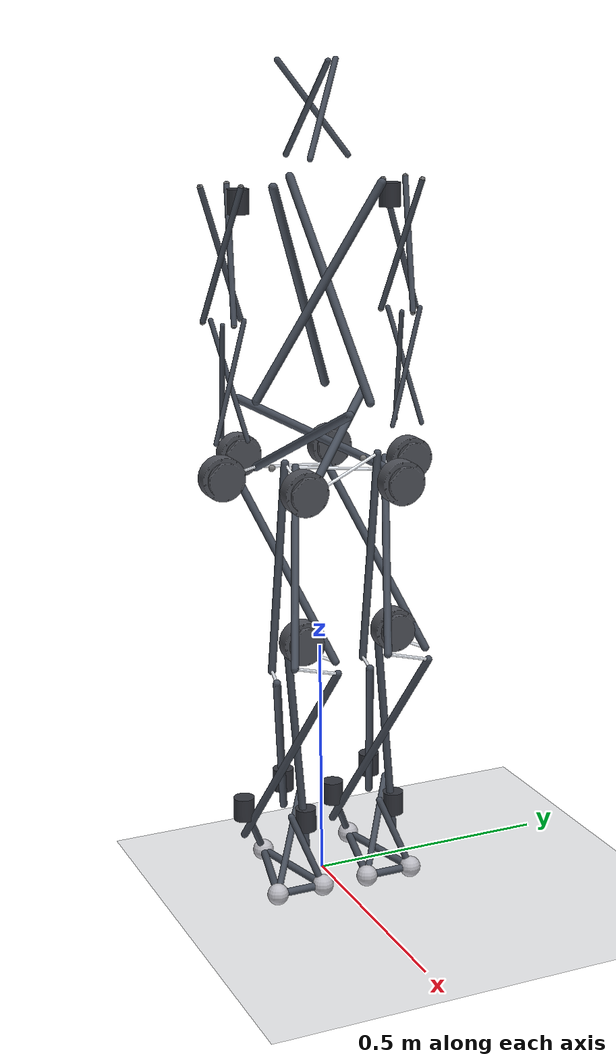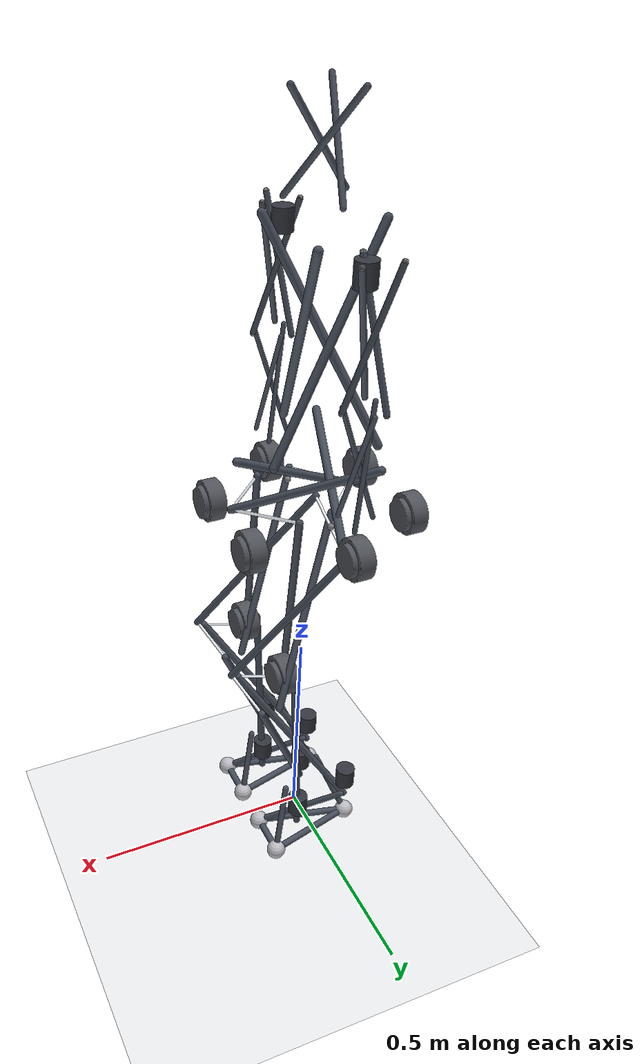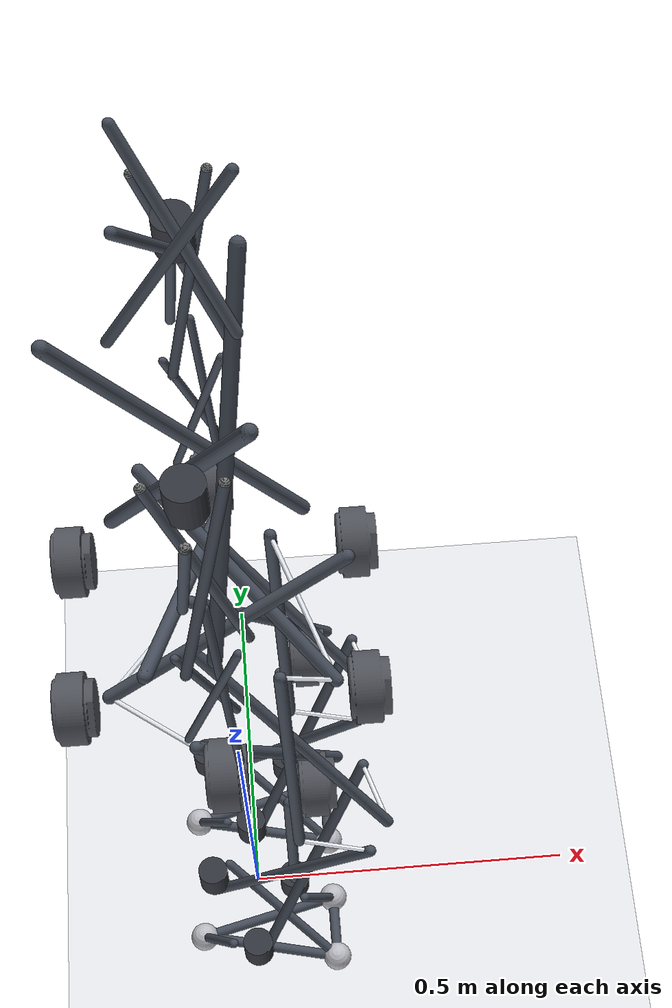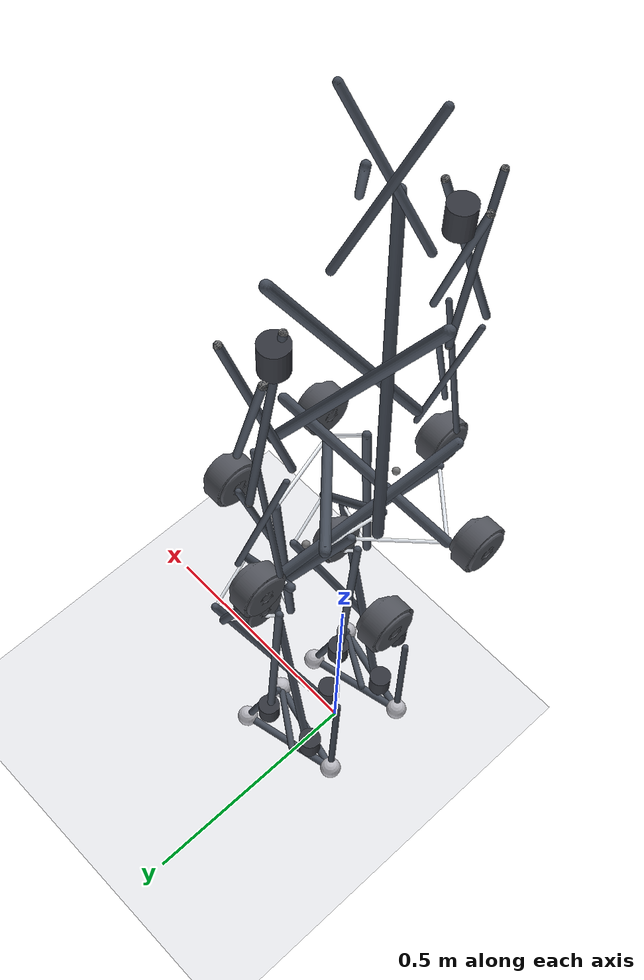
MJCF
<mujoco model="Hybrid Tensegrity Humanoid">
  <compiler angle="radian" autolimits="true" meshdir="assets"/>
  <option timestep="0.004" integrator="implicitfast" solver="Newton" iterations="60"/>
  <visual><global offwidth="1600" offheight="1200"/><map force="0.005"/></visual>
  <asset>
    <mesh name="ak70" file="ak70_10.stl"/>
    <mesh name="ak60" file="ak60_6.stl"/>
    <texture name="grid" type="2d" builtin="checker" rgb1="0.88 0.89 0.90" rgb2="0.96 0.96 0.97" width="512" height="512"/>
    <material name="grid" texture="grid" texrepeat="10 10"/>
  </asset>
  <default>
    <joint damping="1.5" armature="0.02" limited="true"/>
    <motor ctrllimited="true" ctrlrange="-1 1"/>
    <tendon rgba="0.95 0.97 1 1" width="0.0032"/>
  </default>
  <worldbody>
    <light pos="1.5 -1.5 3" dir="-0.35 0.35 -1" directional="true"/>
    <light pos="-2 1.5 2.5" dir="0.5 -0.4 -1" directional="true" diffuse="0.35 0.35 0.35"/>
    <geom name="floor" type="plane" size="8 8 0.1" material="grid" contype="1" conaffinity="1" friction="1.2 0.01 0.001"/>
    <body name="pelvis" pos="0 0 0.93900">
      <freejoint name="root"/>
      <geom type="capsule" size="0.009" mass="0" contype="0" conaffinity="0" rgba="0.28 0.31 0.36 1" fromto="0.00000 0.16000 -0.08000 -0.08048 -0.13828 0.08000"/>
      <geom type="capsule" size="0.009" mass="0" contype="0" conaffinity="0" rgba="0.28 0.31 0.36 1" fromto="-0.13856 -0.08000 -0.08000 0.16000 -0.00056 0.08000"/>
      <geom type="capsule" size="0.009" mass="0" contype="0" conaffinity="0" rgba="0.28 0.31 0.36 1" fromto="0.13856 -0.08000 -0.08000 -0.07952 0.13884 0.08000"/>
      <site name="pelv_b0" pos="0.00000 0.16000 -0.08000" size="0.006"/>
      <site name="pelv_t0" pos="-0.07952 0.13884 0.08000" size="0.006"/>
      <site name="pelv_b1" pos="-0.13856 -0.08000 -0.08000" size="0.006"/>
      <site name="pelv_t1" pos="-0.08048 -0.13828 0.08000" size="0.006"/>
      <site name="pelv_b2" pos="0.13856 -0.08000 -0.08000" size="0.006"/>
      <site name="pelv_t2" pos="0.16000 -0.00056 0.08000" size="0.006"/>
      <geom type="mesh" mesh="ak70" mass="0" contype="0" conaffinity="0" rgba="0.32 0.33 0.36 1" pos="0.17754 0.10250 -0.06000" xyaxes="0 0 1 0 1 0"/>
      <geom type="mesh" mesh="ak70" mass="0" contype="0" conaffinity="0" rgba="0.32 0.33 0.36 1" pos="0.00000 0.20500 -0.06000" xyaxes="0 0 1 0 1 0"/>
      <geom type="mesh" mesh="ak70" mass="0" contype="0" conaffinity="0" rgba="0.32 0.33 0.36 1" pos="-0.17754 0.10250 -0.06000" xyaxes="0 0 1 0 1 0"/>
      <geom type="mesh" mesh="ak70" mass="0" contype="0" conaffinity="0" rgba="0.32 0.33 0.36 1" pos="-0.17754 -0.10250 -0.06000" xyaxes="0 0 1 0 1 0"/>
      <geom type="mesh" mesh="ak70" mass="0" contype="0" conaffinity="0" rgba="0.32 0.33 0.36 1" pos="-0.00000 -0.20500 -0.06000" xyaxes="0 0 1 0 1 0"/>
      <geom type="mesh" mesh="ak70" mass="0" contype="0" conaffinity="0" rgba="0.32 0.33 0.36 1" pos="0.17754 -0.10250 -0.06000" xyaxes="0 0 1 0 1 0"/>
      <inertial pos="-0.01911 0.00000 -0.00395" mass="9.4200" fullinertia="0.095591 0.098451 0.154459 -0.000000 0.006711 0.000000"/>
      <site name="hip_anchor_l" pos="0.00000 0.10000 -0.05000" size="0.007"/>
      <site name="hip_anchor_r" pos="0.00000 -0.10000 -0.05000" size="0.007"/>
      <body name="torso" pos="0 0 0.30000">
        <geom type="capsule" size="0.009" mass="0" contype="0" conaffinity="0" rgba="0.28 0.31 0.36 1" fromto="-0.11258 0.06500 -0.21000 0.06461 -0.11281 0.21000"/>
        <geom type="capsule" size="0.009" mass="0" contype="0" conaffinity="0" rgba="0.28 0.31 0.36 1" fromto="-0.00000 -0.13000 -0.21000 0.06539 0.11236 0.21000"/>
        <geom type="capsule" size="0.009" mass="0" contype="0" conaffinity="0" rgba="0.28 0.31 0.36 1" fromto="0.11258 0.06500 -0.21000 -0.13000 0.00045 0.21000"/>
        <site name="torso_b0" pos="-0.11258 0.06500 -0.21000" size="0.006"/>
        <site name="torso_t0" pos="-0.13000 0.00045 0.21000" size="0.006"/>
        <site name="torso_b1" pos="-0.00000 -0.13000 -0.21000" size="0.006"/>
        <site name="torso_t1" pos="0.06461 -0.11281 0.21000" size="0.006"/>
        <site name="torso_b2" pos="0.11258 0.06500 -0.21000" size="0.006"/>
        <site name="torso_t2" pos="0.06539 0.11236 0.21000" size="0.006"/>
        <geom type="cylinder" size="0.022 0.024" mass="0" contype="0" conaffinity="0" rgba="0.20 0.21 0.24 1" pos="0.00000 0.16000 0.18000"/>
        <geom type="cylinder" size="0.022 0.024" mass="0" contype="0" conaffinity="0" rgba="0.20 0.21 0.24 1" pos="0.00000 -0.16000 0.18000"/>
        <inertial pos="0.00000 0.00000 0.03882" mass="1.5300" fullinertia="0.044614 0.036166 0.028728 0.000000 0.000000 0.000000"/>
        <body name="head" pos="0 0 0.35000">
          <geom type="capsule" size="0.006" mass="0" contype="0" conaffinity="0" rgba="0.28 0.31 0.36 1" fromto="0.00000 0.07000 -0.09000 -0.03521 -0.06050 0.09000"/>
          <geom type="capsule" size="0.006" mass="0" contype="0" conaffinity="0" rgba="0.28 0.31 0.36 1" fromto="-0.06062 -0.03500 -0.09000 0.07000 -0.00024 0.09000"/>
          <geom type="capsule" size="0.006" mass="0" contype="0" conaffinity="0" rgba="0.28 0.31 0.36 1" fromto="0.06062 -0.03500 -0.09000 -0.03479 0.06074 0.09000"/>
          <inertial pos="0.00000 0.00000 0.00000" mass="0.5000" fullinertia="0.002575 0.002575 0.002450 0.000000 0.000000 0.000000"/>
        </body>
        <body name="upper_arm_l" pos="0.00000 0.19000 0.21000">
          <joint name="shoulder_pitch_l" type="hinge" axis="0 -1 0" range="-2.5 1.5"/>
          <geom type="capsule" size="0.006" mass="0" contype="0" conaffinity="0" rgba="0.28 0.31 0.36 1" fromto="0.00000 -0.04500 0.00000 -0.02264 0.03889 -0.26000"/>
          <geom type="capsule" size="0.006" mass="0" contype="0" conaffinity="0" rgba="0.28 0.31 0.36 1" fromto="-0.03897 0.02250 0.00000 0.04500 0.00016 -0.26000"/>
          <geom type="capsule" size="0.006" mass="0" contype="0" conaffinity="0" rgba="0.28 0.31 0.36 1" fromto="0.03897 0.02250 0.00000 -0.02236 -0.03905 -0.26000"/>
          <site name="ua_l_b0" pos="0.00000 -0.04500 0.00000" size="0.006"/>
          <site name="ua_l_t0" pos="-0.02236 -0.03905 -0.26000" size="0.006"/>
          <site name="ua_l_b1" pos="-0.03897 0.02250 0.00000" size="0.006"/>
          <site name="ua_l_t1" pos="-0.02264 0.03889 -0.26000" size="0.006"/>
          <site name="ua_l_b2" pos="0.03897 0.02250 0.00000" size="0.006"/>
          <site name="ua_l_t2" pos="0.04500 0.00016 -0.26000" size="0.006"/>
          <inertial pos="0.00000 0.00000 -0.13000" mass="0.2500" fullinertia="0.001661 0.001661 0.000506 0.000000 0.000000 0.000000"/>
          <body name="forearm_l" pos="0 0 -0.26000">
            <joint name="elbow_l" type="hinge" axis="0 -1 0" range="-2.4 0.05"/>
            <geom type="capsule" size="0.005" mass="0" contype="0" conaffinity="0" rgba="0.28 0.31 0.36 1" fromto="-0.03291 -0.01900 0.00000 0.01889 0.03298 -0.23400"/>
            <geom type="capsule" size="0.005" mass="0" contype="0" conaffinity="0" rgba="0.28 0.31 0.36 1" fromto="-0.00000 0.03800 0.00000 0.01911 -0.03284 -0.23400"/>
            <geom type="capsule" size="0.005" mass="0" contype="0" conaffinity="0" rgba="0.28 0.31 0.36 1" fromto="0.03291 -0.01900 0.00000 -0.03800 -0.00013 -0.23400"/>
            <inertial pos="0.00000 0.00000 -0.11700" mass="0.2000" fullinertia="0.001057 0.001057 0.000289 0.000000 0.000000 0.000000"/>
          </body>
        </body>
        <body name="upper_arm_r" pos="0.00000 -0.19000 0.21000">
          <joint name="shoulder_pitch_r" type="hinge" axis="0 -1 0" range="-2.5 1.5"/>
          <geom type="capsule" size="0.006" mass="0" contype="0" conaffinity="0" rgba="0.28 0.31 0.36 1" fromto="0.00000 -0.04500 0.00000 -0.02264 0.03889 -0.26000"/>
          <geom type="capsule" size="0.006" mass="0" contype="0" conaffinity="0" rgba="0.28 0.31 0.36 1" fromto="-0.03897 0.02250 0.00000 0.04500 0.00016 -0.26000"/>
          <geom type="capsule" size="0.006" mass="0" contype="0" conaffinity="0" rgba="0.28 0.31 0.36 1" fromto="0.03897 0.02250 0.00000 -0.02236 -0.03905 -0.26000"/>
          <site name="ua_r_b0" pos="0.00000 -0.04500 0.00000" size="0.006"/>
          <site name="ua_r_t0" pos="-0.02236 -0.03905 -0.26000" size="0.006"/>
          <site name="ua_r_b1" pos="-0.03897 0.02250 0.00000" size="0.006"/>
          <site name="ua_r_t1" pos="-0.02264 0.03889 -0.26000" size="0.006"/>
          <site name="ua_r_b2" pos="0.03897 0.02250 0.00000" size="0.006"/>
          <site name="ua_r_t2" pos="0.04500 0.00016 -0.26000" size="0.006"/>
          <inertial pos="0.00000 0.00000 -0.13000" mass="0.2500" fullinertia="0.001661 0.001661 0.000506 0.000000 0.000000 0.000000"/>
          <body name="forearm_r" pos="0 0 -0.26000">
            <joint name="elbow_r" type="hinge" axis="0 -1 0" range="-2.4 0.05"/>
            <geom type="capsule" size="0.005" mass="0" contype="0" conaffinity="0" rgba="0.28 0.31 0.36 1" fromto="-0.03291 -0.01900 0.00000 0.01889 0.03298 -0.23400"/>
            <geom type="capsule" size="0.005" mass="0" contype="0" conaffinity="0" rgba="0.28 0.31 0.36 1" fromto="-0.00000 0.03800 0.00000 0.01911 -0.03284 -0.23400"/>
            <geom type="capsule" size="0.005" mass="0" contype="0" conaffinity="0" rgba="0.28 0.31 0.36 1" fromto="0.03291 -0.01900 0.00000 -0.03800 -0.00013 -0.23400"/>
            <inertial pos="0.00000 0.00000 -0.11700" mass="0.2000" fullinertia="0.001057 0.001057 0.000289 0.000000 0.000000 0.000000"/>
          </body>
        </body>
      </body>
      <body name="thigh_l" pos="0.00000 0.10000 -0.05000">
        <joint name="hip_yaw_l" type="hinge" axis="0 0 1" range="-0.8 0.8"/>
        <joint name="hip_roll_l" type="hinge" axis="1 0 0" range="-0.6 0.6"/>
        <joint name="hip_pitch_l" type="hinge" axis="0 -1 0" range="-1.8 1.0"/>
        <geom type="capsule" size="0.008" mass="0" contype="0" conaffinity="0" rgba="0.28 0.31 0.36 1" fromto="0.13716 0.07500 -0.37575 -0.03544 -0.06482 -0.01294"/>
        <geom type="capsule" size="0.008" mass="0" contype="0" conaffinity="0" rgba="0.28 0.31 0.36 1" fromto="0.07615 -0.03750 -0.39802 0.07045 -0.00026 0.02572"/>
        <geom type="capsule" size="0.008" mass="0" contype="0" conaffinity="0" rgba="0.28 0.31 0.36 1" fromto="0.19817 -0.03750 -0.35348 -0.03501 0.06508 -0.01278"/>
        <site name="th_l_b0" pos="0.13716 0.07500 -0.37575" size="0.006"/>
        <site name="th_l_t0" pos="-0.03501 0.06508 -0.01278" size="0.006"/>
        <site name="th_l_b1" pos="0.07615 -0.03750 -0.39802" size="0.006"/>
        <site name="th_l_t1" pos="-0.03544 -0.06482 -0.01294" size="0.006"/>
        <site name="th_l_b2" pos="0.19817 -0.03750 -0.35348" size="0.006"/>
        <site name="th_l_t2" pos="0.07045 -0.00026 0.02572" size="0.006"/>
        <geom type="mesh" mesh="ak70" mass="0" contype="0" conaffinity="0" rgba="0.32 0.33 0.36 1" pos="0.10665 0.01875 -0.33689" xyaxes="0 0 1 0 1 0"/>
        <inertial pos="0.08799 0.00956 -0.26384" mass="1.0200" fullinertia="0.013822 0.014102 0.003272 -0.000182 0.001446 0.000712"/>
        <body name="shank_l" pos="0.13716 0.00000 -0.37575">
          <joint name="knee_l" type="hinge" axis="0 -1 0" range="-0.1 2.2"/>
          <geom type="capsule" size="0.008" mass="0" contype="0" conaffinity="0" rgba="0.28 0.31 0.36 1" fromto="-0.19865 0.03750 -0.38233 0.03529 -0.06508 -0.01200"/>
          <geom type="capsule" size="0.008" mass="0" contype="0" conaffinity="0" rgba="0.28 0.31 0.36 1" fromto="-0.13716 -0.07500 -0.40325 0.03572 0.06482 -0.01215"/>
          <geom type="capsule" size="0.008" mass="0" contype="0" conaffinity="0" rgba="0.28 0.31 0.36 1" fromto="-0.07567 0.03750 -0.42416 -0.07100 0.00026 0.02415"/>
          <site name="sh_l_b0" pos="-0.19865 0.03750 -0.38233" size="0.006"/>
          <site name="sh_l_t0" pos="-0.07100 0.00026 0.02415" size="0.006"/>
          <site name="sh_l_b1" pos="-0.13716 -0.07500 -0.40325" size="0.006"/>
          <site name="sh_l_t1" pos="0.03529 -0.06508 -0.01200" size="0.006"/>
          <site name="sh_l_b2" pos="-0.07567 0.03750 -0.42416" size="0.006"/>
          <site name="sh_l_t2" pos="0.03572 0.06482 -0.01215" size="0.006"/>
          <geom type="cylinder" size="0.022 0.024" mass="0" contype="0" conaffinity="0" rgba="0.20 0.21 0.24 1" pos="-0.19865 0.03750 -0.32233"/>
          <geom type="cylinder" size="0.022 0.024" mass="0" contype="0" conaffinity="0" rgba="0.20 0.21 0.24 1" pos="-0.13716 -0.07500 -0.34325"/>
          <geom type="cylinder" size="0.022 0.024" mass="0" contype="0" conaffinity="0" rgba="0.20 0.21 0.24 1" pos="-0.07567 0.03750 -0.36416"/>
          <inertial pos="-0.10270 -0.00000 -0.26517" mass="0.9950" fullinertia="0.015614 0.016640 0.006622 0.000000 -0.002226 -0.000000"/>
        <body name="foot_l" pos="-0.13716 0.00000 -0.46925">

      <geom name="pad_l0" type="sphere" size="0.022" mass="0" contype="1" conaffinity="1" friction="1.2 0.01 0.001" rgba="0.75 0.75 0.78 1" pos="-0.09000 0.00000 -0.02200"/>
      <geom name="pad_l1" type="sphere" size="0.022" mass="0" contype="1" conaffinity="1" friction="1.2 0.01 0.001" rgba="0.75 0.75 0.78 1" pos="0.12000 0.05000 -0.02200"/>
      <geom name="pad_l2" type="sphere" size="0.022" mass="0" contype="1" conaffinity="1" friction="1.2 0.01 0.001" rgba="0.75 0.75 0.78 1" pos="0.12000 -0.05000 -0.02200"/>
      <geom type="capsule" size="0.008" mass="0" contype="0" conaffinity="0" rgba="0.28 0.31 0.36 1" fromto="-0.09000 0.00000 -0.02200 0.12000 0.05000 -0.02200"/>
      <geom type="capsule" size="0.008" mass="0" contype="0" conaffinity="0" rgba="0.28 0.31 0.36 1" fromto="0.12000 0.05000 -0.02200 0.12000 -0.05000 -0.02200"/>
      <geom type="capsule" size="0.008" mass="0" contype="0" conaffinity="0" rgba="0.28 0.31 0.36 1" fromto="0.12000 -0.05000 -0.02200 -0.09000 0.00000 -0.02200"/>
      <geom type="capsule" size="0.007" mass="0" contype="0" conaffinity="0" rgba="0.28 0.31 0.36 1" fromto="-0.09000 0.00000 -0.02200 -0.03750 -0.06495 0.12100"/>
      <geom type="capsule" size="0.007" mass="0" contype="0" conaffinity="0" rgba="0.28 0.31 0.36 1" fromto="0.12000 0.05000 -0.02200 0.07500 -0.00000 0.12100"/>
      <geom type="capsule" size="0.007" mass="0" contype="0" conaffinity="0" rgba="0.28 0.31 0.36 1" fromto="0.12000 -0.05000 -0.02200 -0.03750 0.06495 0.12100"/>
      <site name="mast_l0" pos="-0.03750 0.06495 0.12100" size="0.006"/>
      <site name="plate_l0" pos="-0.09000 0.00000 -0.02200" size="0.005"/>
      <site name="mast_l1" pos="-0.03750 -0.06495 0.12100" size="0.006"/>
      <site name="plate_l1" pos="0.12000 0.05000 -0.02200" size="0.005"/>
      <site name="mast_l2" pos="0.07500 -0.00000 0.12100" size="0.006"/>
      <site name="plate_l2" pos="0.12000 -0.05000 -0.02200" size="0.005"/>
      <inertial pos="0.02000 0.00000 0.03000" mass="0.4500" fullinertia="0.002843 0.002843 0.003645 0.000000 0.000000 0.000000"/>
    </body>
      </body>
      </body>
      <body name="thigh_r" pos="0.00000 -0.10000 -0.05000">
        <joint name="hip_yaw_r" type="hinge" axis="0 0 1" range="-0.8 0.8"/>
        <joint name="hip_roll_r" type="hinge" axis="1 0 0" range="-0.6 0.6"/>
        <joint name="hip_pitch_r" type="hinge" axis="0 -1 0" range="-1.8 1.0"/>
        <geom type="capsule" size="0.008" mass="0" contype="0" conaffinity="0" rgba="0.28 0.31 0.36 1" fromto="0.13716 0.07500 -0.37575 -0.03544 -0.06482 -0.01294"/>
        <geom type="capsule" size="0.008" mass="0" contype="0" conaffinity="0" rgba="0.28 0.31 0.36 1" fromto="0.07615 -0.03750 -0.39802 0.07045 -0.00026 0.02572"/>
        <geom type="capsule" size="0.008" mass="0" contype="0" conaffinity="0" rgba="0.28 0.31 0.36 1" fromto="0.19817 -0.03750 -0.35348 -0.03501 0.06508 -0.01278"/>
        <site name="th_r_b0" pos="0.13716 0.07500 -0.37575" size="0.006"/>
        <site name="th_r_t0" pos="-0.03501 0.06508 -0.01278" size="0.006"/>
        <site name="th_r_b1" pos="0.07615 -0.03750 -0.39802" size="0.006"/>
        <site name="th_r_t1" pos="-0.03544 -0.06482 -0.01294" size="0.006"/>
        <site name="th_r_b2" pos="0.19817 -0.03750 -0.35348" size="0.006"/>
        <site name="th_r_t2" pos="0.07045 -0.00026 0.02572" size="0.006"/>
        <geom type="mesh" mesh="ak70" mass="0" contype="0" conaffinity="0" rgba="0.32 0.33 0.36 1" pos="0.10665 0.01875 -0.33689" xyaxes="0 0 1 0 1 0"/>
        <inertial pos="0.08799 0.00956 -0.26384" mass="1.0200" fullinertia="0.013822 0.014102 0.003272 -0.000182 0.001446 0.000712"/>
        <body name="shank_r" pos="0.13716 0.00000 -0.37575">
          <joint name="knee_r" type="hinge" axis="0 -1 0" range="-0.1 2.2"/>
          <geom type="capsule" size="0.008" mass="0" contype="0" conaffinity="0" rgba="0.28 0.31 0.36 1" fromto="-0.19865 0.03750 -0.38233 0.03529 -0.06508 -0.01200"/>
          <geom type="capsule" size="0.008" mass="0" contype="0" conaffinity="0" rgba="0.28 0.31 0.36 1" fromto="-0.13716 -0.07500 -0.40325 0.03572 0.06482 -0.01215"/>
          <geom type="capsule" size="0.008" mass="0" contype="0" conaffinity="0" rgba="0.28 0.31 0.36 1" fromto="-0.07567 0.03750 -0.42416 -0.07100 0.00026 0.02415"/>
          <site name="sh_r_b0" pos="-0.19865 0.03750 -0.38233" size="0.006"/>
          <site name="sh_r_t0" pos="-0.07100 0.00026 0.02415" size="0.006"/>
          <site name="sh_r_b1" pos="-0.13716 -0.07500 -0.40325" size="0.006"/>
          <site name="sh_r_t1" pos="0.03529 -0.06508 -0.01200" size="0.006"/>
          <site name="sh_r_b2" pos="-0.07567 0.03750 -0.42416" size="0.006"/>
          <site name="sh_r_t2" pos="0.03572 0.06482 -0.01215" size="0.006"/>
          <geom type="cylinder" size="0.022 0.024" mass="0" contype="0" conaffinity="0" rgba="0.20 0.21 0.24 1" pos="-0.19865 0.03750 -0.32233"/>
          <geom type="cylinder" size="0.022 0.024" mass="0" contype="0" conaffinity="0" rgba="0.20 0.21 0.24 1" pos="-0.13716 -0.07500 -0.34325"/>
          <geom type="cylinder" size="0.022 0.024" mass="0" contype="0" conaffinity="0" rgba="0.20 0.21 0.24 1" pos="-0.07567 0.03750 -0.36416"/>
          <inertial pos="-0.10270 -0.00000 -0.26517" mass="0.9950" fullinertia="0.015614 0.016640 0.006622 0.000000 -0.002226 -0.000000"/>
        <body name="foot_r" pos="-0.13716 0.00000 -0.46925">

      <geom name="pad_r0" type="sphere" size="0.022" mass="0" contype="1" conaffinity="1" friction="1.2 0.01 0.001" rgba="0.75 0.75 0.78 1" pos="-0.09000 0.00000 -0.02200"/>
      <geom name="pad_r1" type="sphere" size="0.022" mass="0" contype="1" conaffinity="1" friction="1.2 0.01 0.001" rgba="0.75 0.75 0.78 1" pos="0.12000 0.05000 -0.02200"/>
      <geom name="pad_r2" type="sphere" size="0.022" mass="0" contype="1" conaffinity="1" friction="1.2 0.01 0.001" rgba="0.75 0.75 0.78 1" pos="0.12000 -0.05000 -0.02200"/>
      <geom type="capsule" size="0.008" mass="0" contype="0" conaffinity="0" rgba="0.28 0.31 0.36 1" fromto="-0.09000 0.00000 -0.02200 0.12000 0.05000 -0.02200"/>
      <geom type="capsule" size="0.008" mass="0" contype="0" conaffinity="0" rgba="0.28 0.31 0.36 1" fromto="0.12000 0.05000 -0.02200 0.12000 -0.05000 -0.02200"/>
      <geom type="capsule" size="0.008" mass="0" contype="0" conaffinity="0" rgba="0.28 0.31 0.36 1" fromto="0.12000 -0.05000 -0.02200 -0.09000 0.00000 -0.02200"/>
      <geom type="capsule" size="0.007" mass="0" contype="0" conaffinity="0" rgba="0.28 0.31 0.36 1" fromto="-0.09000 0.00000 -0.02200 -0.03750 -0.06495 0.12100"/>
      <geom type="capsule" size="0.007" mass="0" contype="0" conaffinity="0" rgba="0.28 0.31 0.36 1" fromto="0.12000 0.05000 -0.02200 0.07500 -0.00000 0.12100"/>
      <geom type="capsule" size="0.007" mass="0" contype="0" conaffinity="0" rgba="0.28 0.31 0.36 1" fromto="0.12000 -0.05000 -0.02200 -0.03750 0.06495 0.12100"/>
      <site name="mast_r0" pos="-0.03750 0.06495 0.12100" size="0.006"/>
      <site name="plate_r0" pos="-0.09000 0.00000 -0.02200" size="0.005"/>
      <site name="mast_r1" pos="-0.03750 -0.06495 0.12100" size="0.006"/>
      <site name="plate_r1" pos="0.12000 0.05000 -0.02200" size="0.005"/>
      <site name="mast_r2" pos="0.07500 -0.00000 0.12100" size="0.006"/>
      <site name="plate_r2" pos="0.12000 -0.05000 -0.02200" size="0.005"/>
      <inertial pos="0.02000 0.00000 0.03000" mass="0.4500" fullinertia="0.002843 0.002843 0.003645 0.000000 0.000000 0.000000"/>
    </body>
      </body>
      </body>
    </body>

  </worldbody>
  <tendon>

    <spatial name="hipc_l0" stiffness="300.0" damping="2.0" springlength="0 0.038755">
      <site site="pelv_b0"/>
      <site site="th_l_t0"/>
    </spatial>
    <spatial name="kneec_l0" stiffness="300.0" damping="2.0" springlength="0 0.104290">
      <site site="th_l_b0"/>
      <site site="sh_l_t0"/>
    </spatial>
    <spatial name="hipc_l1" stiffness="300.0" damping="2.0" springlength="0 0.153202">
      <site site="pelv_b1"/>
      <site site="th_l_t1"/>
    </spatial>
    <spatial name="kneec_l1" stiffness="300.0" damping="2.0" springlength="0 0.099186">
      <site site="th_l_b1"/>
      <site site="sh_l_t1"/>
    </spatial>
    <spatial name="hipc_l2" stiffness="300.0" damping="2.0" springlength="0 0.197123">
      <site site="pelv_b2"/>
      <site site="th_l_t2"/>
    </spatial>
    <spatial name="kneec_l2" stiffness="300.0" damping="2.0" springlength="0 0.109214">
      <site site="th_l_b2"/>
      <site site="sh_l_t2"/>
    </spatial>
    <spatial name="hipc_r0" stiffness="300.0" damping="2.0" springlength="0 0.195805">
      <site site="pelv_b0"/>
      <site site="th_r_t0"/>
    </spatial>
    <spatial name="kneec_r0" stiffness="300.0" damping="2.0" springlength="0 0.104290">
      <site site="th_r_b0"/>
      <site site="sh_r_t0"/>
    </spatial>
    <spatial name="hipc_r1" stiffness="300.0" damping="2.0" springlength="0 0.132589">
      <site site="pelv_b1"/>
      <site site="th_r_t1"/>
    </spatial>
    <spatial name="kneec_r1" stiffness="300.0" damping="2.0" springlength="0 0.099186">
      <site site="th_r_b1"/>
      <site site="sh_r_t1"/>
    </spatial>
    <spatial name="hipc_r2" stiffness="300.0" damping="2.0" springlength="0 0.088946">
      <site site="pelv_b2"/>
      <site site="th_r_t2"/>
    </spatial>
    <spatial name="kneec_r2" stiffness="300.0" damping="2.0" springlength="0 0.109214">
      <site site="th_r_b2"/>
      <site site="sh_r_t2"/>
    </spatial>
  </tendon>
  <actuator>
    <motor name="hip_yaw_l" joint="hip_yaw_l" gear="40"/>
    <motor name="hip_roll_l" joint="hip_roll_l" gear="60"/>
    <motor name="hip_pitch_l" joint="hip_pitch_l" gear="80"/>
    <motor name="knee_l" joint="knee_l" gear="80"/>
    <motor name="hip_yaw_r" joint="hip_yaw_r" gear="40"/>
    <motor name="hip_roll_r" joint="hip_roll_r" gear="60"/>
    <motor name="hip_pitch_r" joint="hip_pitch_r" gear="80"/>
    <motor name="knee_r" joint="knee_r" gear="80"/>
    <motor name="shoulder_pitch_l" joint="shoulder_pitch_l" gear="15"/>
    <motor name="elbow_l" joint="elbow_l" gear="10"/>
    <motor name="shoulder_pitch_r" joint="shoulder_pitch_r" gear="15"/>
    <motor name="elbow_r" joint="elbow_r" gear="10"/>
  </actuator>
</mujoco>
